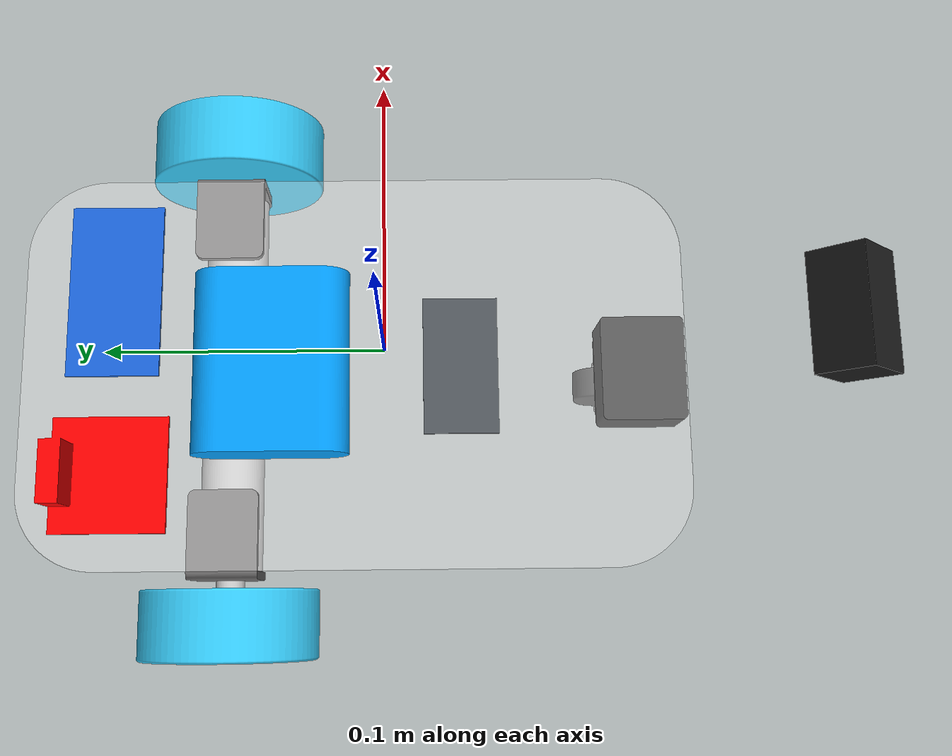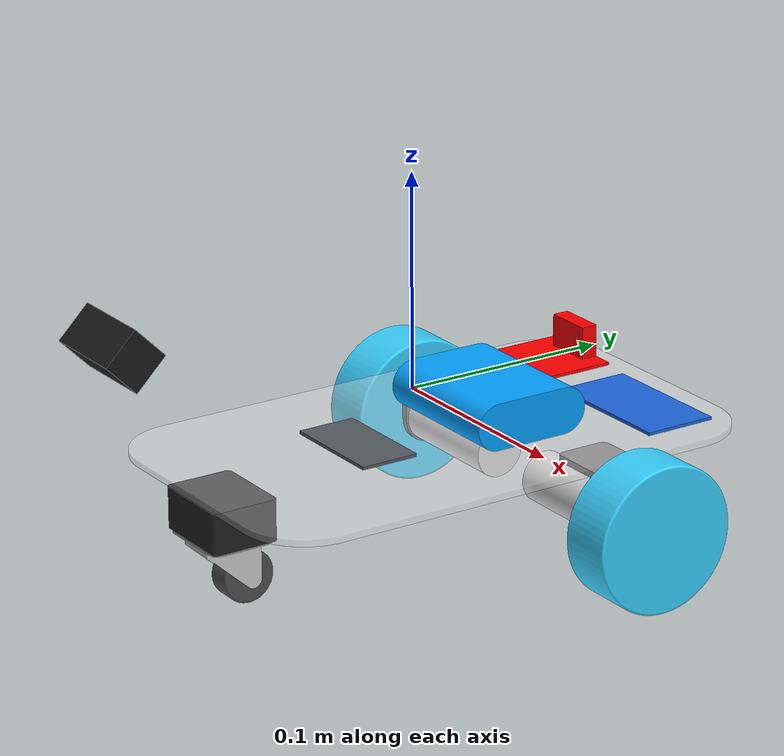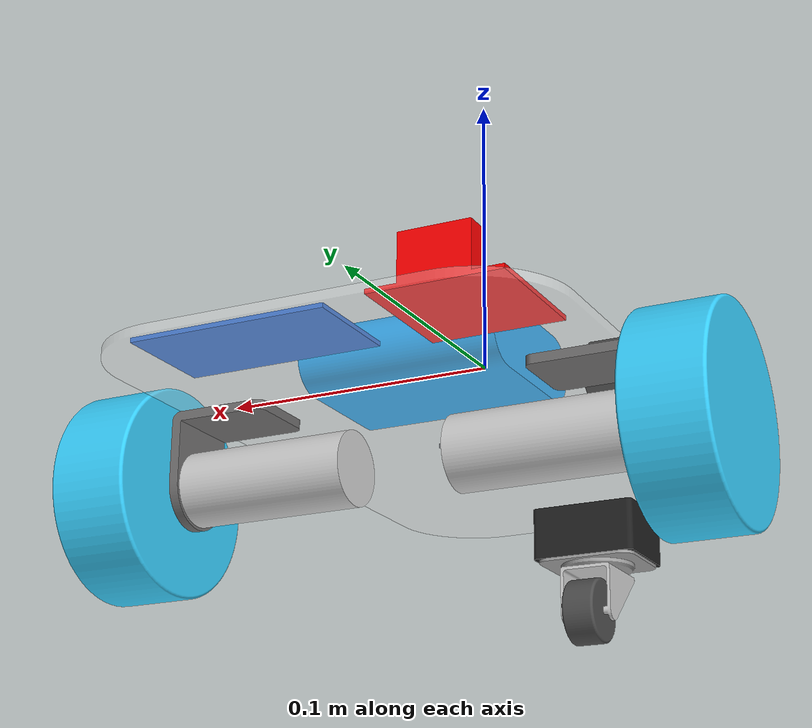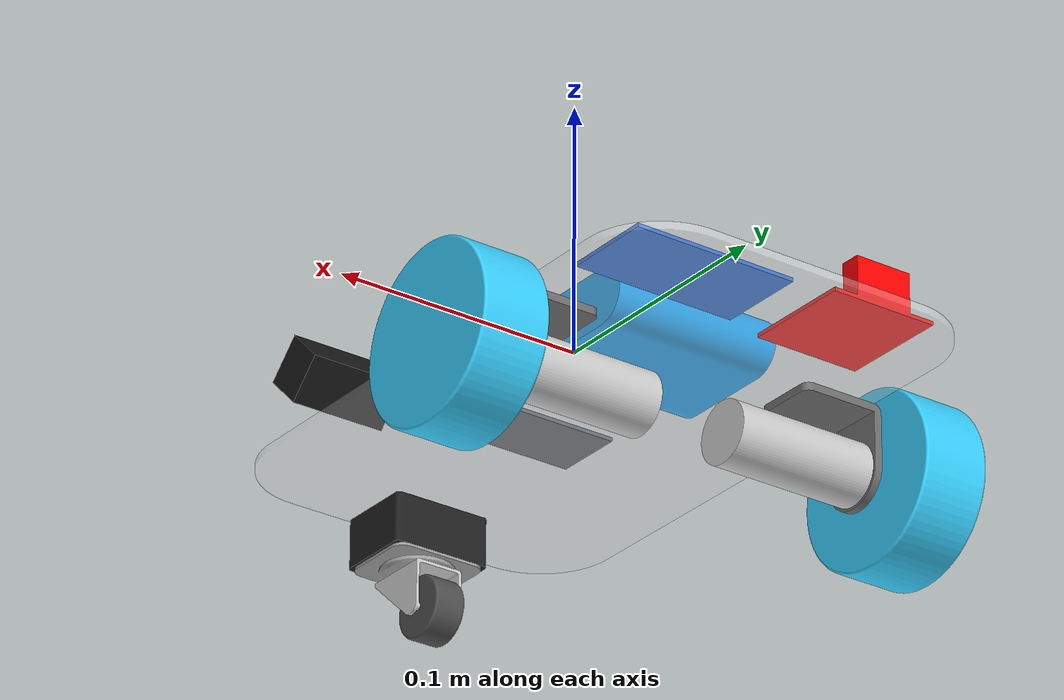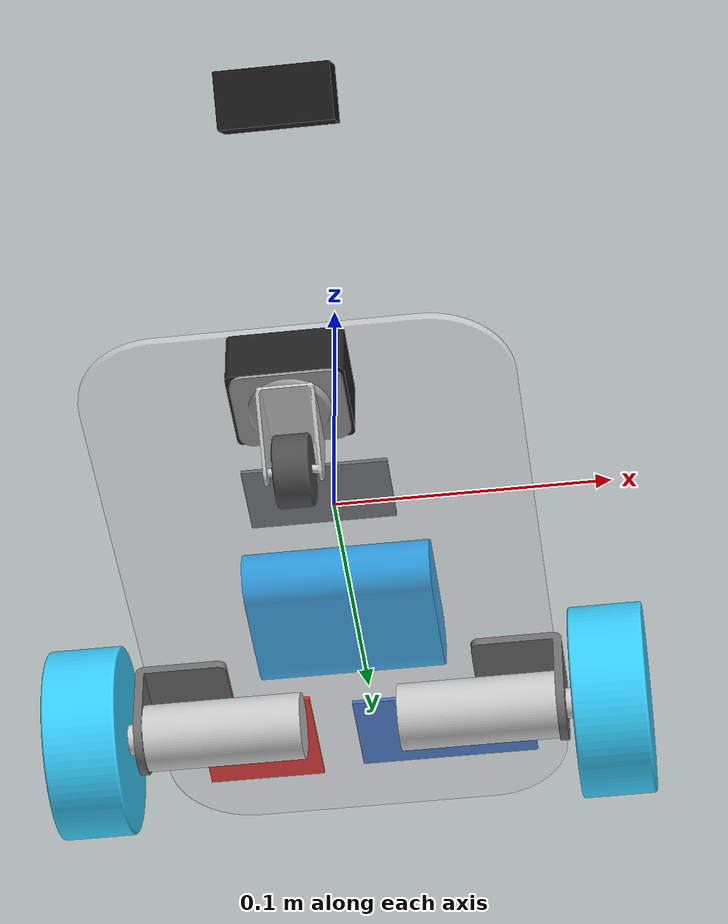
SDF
<?xml version="1.0"?>
<sdf version='1.11'>
  <model name='rover'>
    <link name='base_link'>
      <inertial>
        <pose>-0.00237104 0.0277886 -0.020183599999999999 0 0 0</pose>
        <mass>0.35311599999999999</mass>
        <inertia>
          <ixx>0.00151318</ixx>
          <ixy>3.1576699999999999e-05</ixy>
          <ixz>4.1676499999999998e-06</ixz>
          <iyy>0.00036664100000000002</iyy>
          <iyz>-9.9848999999999999e-05</iyz>
          <izz>0.00182412</izz>
        </inertia>
      </inertial>
      <visual name='base_link_visual'>
        <pose>0.016086300000000001 -0.0852797 0.27276499999999998 -4.7878224133139768e-16 1.5707963267948966 0</pose>
        <geometry>
          <mesh>
            <scale>1 1 1</scale>
            <uri>model://gazebo_gymnasium_resources/models/rover/assets/left_motor.stl</uri>
          </mesh>
        </geometry>
        <material>
          <diffuse>0.808823764 0.808823764 0.808823764 1</diffuse>
          <ambient>0.808823764 0.808823764 0.808823764 1</ambient>
        </material>
      </visual>
      <visual name='base_link_visual_1'>
        <pose>-0.088691500000000006 -0.18808 -0.0273587 0 0 -1.5708</pose>
        <geometry>
          <mesh>
            <scale>1 1 1</scale>
            <uri>model://gazebo_gymnasium_resources/models/rover/assets/base_plate.stl</uri>
          </mesh>
        </geometry>
        <material>
          <diffuse>1 1 1 0.300000012</diffuse>
          <ambient>1 1 1 0.300000012</ambient>
        </material>
      </visual>
      <visual name='base_link_visual_2'>
        <pose>-0.47371400000000002 0.0946882 -0.046858700000000003 3.1415899999999999 0 -3.1415899999999999</pose>
        <geometry>
          <mesh>
            <scale>1 1 1</scale>
            <uri>model://gazebo_gymnasium_resources/models/rover/assets/front_wheel_upper_joint.stl</uri>
          </mesh>
        </geometry>
        <material>
          <diffuse>0.622548759 0.622548759 0.622548759 1</diffuse>
          <ambient>0.622548759 0.622548759 0.622548759 1</ambient>
        </material>
      </visual>
      <visual name='base_link_visual_3'>
        <pose>-0.47271400000000002 -0.22015199999999999 -0.046858700000000003 0 0 -3.1415899999999999</pose>
        <geometry>
          <mesh>
            <scale>1 1 1</scale>
            <uri>model://gazebo_gymnasium_resources/models/rover/assets/front_wheel_bracket.stl</uri>
          </mesh>
        </geometry>
        <material>
          <diffuse>0.127451256 0.127451256 0.127451256 1</diffuse>
          <ambient>0.127451256 0.127451256 0.127451256 1</ambient>
        </material>
      </visual>
      <visual name='base_link_visual_4'>
        <pose>-0.14862900000000001 0.205404 -0.0273587 3.1415899999999999 -1.503819326961759e-32 2.5673900000000004e-16</pose>
        <geometry>
          <mesh>
            <scale>1 1 1</scale>
            <uri>model://gazebo_gymnasium_resources/models/rover/assets/left_motor_bracket.stl</uri>
          </mesh>
        </geometry>
        <material>
          <diffuse>0.441176265 0.436275005 0.436275005 1</diffuse>
          <ambient>0.441176265 0.436275005 0.436275005 1</ambient>
        </material>
      </visual>
      <visual name='base_link_visual_5'>
        <pose>-0.124871 0.087574899999999997 -0.0243587 0 0 -1.5708</pose>
        <geometry>
          <mesh>
            <scale>1 1 1</scale>
            <uri>model://gazebo_gymnasium_resources/models/rover/assets/battery.stl</uri>
          </mesh>
        </geometry>
        <material>
          <diffuse>0.014705874 0.632352531 1 1</diffuse>
          <ambient>0.014705874 0.632352531 1 1</ambient>
        </material>
      </visual>
      <visual name='base_link_visual_6'>
        <pose>0.119292 0.094404399999999999 -0.021358700000000001 0 0 4.7878400000000003e-16</pose>
        <geometry>
          <mesh>
            <scale>1 1 1</scale>
            <uri>model://gazebo_gymnasium_resources/models/rover/assets/esp32.stl</uri>
          </mesh>
        </geometry>
        <material>
          <diffuse>0.328431249 0.352941275 0.377451241 1</diffuse>
          <ambient>0.328431249 0.352941275 0.377451241 1</ambient>
        </material>
      </visual>
      <visual name='base_link_visual_7'>
        <pose>0.20396 0.300238 -0.021358700000000001 0 0 4.7878400000000003e-16</pose>
        <geometry>
          <mesh>
            <scale>1 1 1</scale>
            <uri>model://gazebo_gymnasium_resources/models/rover/assets/motor_controller.stl</uri>
          </mesh>
        </geometry>
        <material>
          <diffuse>1 0 0 1</diffuse>
          <ambient>1 0 0 1</ambient>
        </material>
      </visual>
      <visual name='base_link_visual_8'>
        <pose>-0.019072599999999999 0.115532 0.27276499999999998 3.141589999990253 1.5707963267948966 0</pose>
        <geometry>
          <mesh>
            <scale>1 1 1</scale>
            <uri>model://gazebo_gymnasium_resources/models/rover/assets/right_motor.stl</uri>
          </mesh>
        </geometry>
        <material>
          <diffuse>0.808823764 0.808823764 0.808823764 1</diffuse>
          <ambient>0.808823764 0.808823764 0.808823764 1</ambient>
        </material>
      </visual>
      <visual name='base_link_visual_9'>
        <pose>0.26251000000000002 0.228404 -0.021358700000000001 0 0 4.7878400000000003e-16</pose>
        <geometry>
          <mesh>
            <scale>1 1 1</scale>
            <uri>model://gazebo_gymnasium_resources/models/rover/assets/voltage_regulator.stl</uri>
          </mesh>
        </geometry>
        <material>
          <diffuse>0.107843123 0.397058755 0.862744987 1</diffuse>
          <ambient>0.107843123 0.397058755 0.862744987 1</ambient>
        </material>
      </visual>
      <visual name='base_link_visual_10'>
        <pose>0.14564199999999999 0.0058481200000000001 -0.0273587 3.1415899999999999 0 -3.1415899999999999</pose>
        <geometry>
          <mesh>
            <scale>1 1 1</scale>
            <uri>model://gazebo_gymnasium_resources/models/rover/assets/right_motor_bracket.stl</uri>
          </mesh>
        </geometry>
        <material>
          <diffuse>0.441176265 0.436275005 0.436275005 1</diffuse>
          <ambient>0.441176265 0.436275005 0.436275005 1</ambient>
        </material>
      </visual>
    </link>
    <joint name='front_swivel' type='revolute'>
      <pose relative_to='base_link'>-0.00149314 -0.097873799999999997 -0.050358699999999999 0 2.4651899999999999e-32 3.67761e-16</pose>
      <parent>base_link</parent>
      <child>front_wheel_lower_joint</child>
      <axis>
        <xyz>0 0 1</xyz>
        <limit>
          <lower>-inf</lower>
          <upper>inf</upper>
        </limit>
        <dynamics>
          <spring_reference>0</spring_reference>
          <spring_stiffness>0</spring_stiffness>
        </dynamics>
      </axis>
    </joint>
    <link name='front_wheel_lower_joint'>
      <pose relative_to='front_swivel'>0 0 0 0 0 0</pose>
      <inertial>
        <pose>0 0 0 0 0 0</pose>
        <mass>1.0000000000000001e-09</mass>
        <inertia>
          <ixx>1.0000000000000001e-09</ixx>
          <ixy>0</ixy>
          <ixz>0</ixz>
          <iyy>1.0000000000000001e-09</iyy>
          <iyz>0</iyz>
          <izz>1.0000000000000001e-09</izz>
        </inertia>
      </inertial>
      <visual name='front_wheel_lower_joint_visual'>
        <pose>0.34329399999999999 -0.19021199999999999 0 3.1415899999999999 0 6.16298e-33</pose>
        <geometry>
          <mesh>
            <scale>1 1 1</scale>
            <uri>model://gazebo_gymnasium_resources/models/rover/assets/front_wheel_lower_joint.stl</uri>
          </mesh>
        </geometry>
        <material>
          <diffuse>0.808823764 0.808823764 0.808823764 1</diffuse>
          <ambient>0.808823764 0.808823764 0.808823764 1</ambient>
        </material>
      </visual>
    </link>
    <joint name='front_axle' type='revolute'>
      <pose relative_to='front_wheel_lower_joint'>0.0063499999999999997 0.0096500000000000006 -0.017113199999999999 2.6535897933403332e-06 -1.5707926536359933 3.1415926535897931</pose>
      <parent>front_wheel_lower_joint</parent>
      <child>front_wheel</child>
      <axis>
        <xyz>0 0 1</xyz>
        <limit>
          <lower>-inf</lower>
          <upper>inf</upper>
        </limit>
        <dynamics>
          <spring_reference>0</spring_reference>
          <spring_stiffness>0</spring_stiffness>
        </dynamics>
      </axis>
    </joint>
    <link name='front_wheel'>
      <pose relative_to='front_axle'>0 0 0 0 0 0</pose>
      <inertial>
        <pose>0 0 0 0 0 0</pose>
        <mass>1.0000000000000001e-09</mass>
        <inertia>
          <ixx>1.0000000000000001e-09</ixx>
          <ixy>0</ixy>
          <ixz>0</ixz>
          <iyy>1.0000000000000001e-09</iyy>
          <iyz>0</iyz>
          <izz>1.0000000000000001e-09</izz>
        </inertia>
      </inertial>
      <visual name='front_wheel_visual'>
        <pose>0.34473399999999998 -0.122278 0 3.1415899999999999 9.3588297156177823e-62 -2.5316400000000017e-47</pose>
        <geometry>
          <mesh>
            <scale>1 1 1</scale>
            <uri>model://gazebo_gymnasium_resources/models/rover/assets/front_wheel.stl</uri>
          </mesh>
        </geometry>
        <material>
          <diffuse>0.308823764 0.308823764 0.308823764 1</diffuse>
          <ambient>0.308823764 0.308823764 0.308823764 1</ambient>
        </material>
      </visual>
      <collision name='front_wheel_collision'>
        <geometry>
          <sphere>
            <radius>0.025</radius>
          </sphere>
        </geometry>
        <surface>
          <friction>
            <ode>
              <mu>0.1</mu>
              <mu2>0.1</mu2>
            </ode>
          </friction>
        </surface>
      </collision>

    </link>
    <joint name='left_axle' type='revolute'>
      <pose relative_to='base_link'>0.079786300000000004 0.061126199999999999 -0.050408700000000001 1.5708 -4.4408920985006262e-16 -1.5708</pose>
      <parent>base_link</parent>
      <child>left_wheel</child>
      <axis>
        <xyz>0 0 1</xyz>
        <limit>
          <lower>-inf</lower>
          <upper>inf</upper>
        </limit>
        <dynamics>
          <spring_reference>0</spring_reference>
          <spring_stiffness>0</spring_stiffness>
        </dynamics>
      </axis>
    </joint>
    <link name='left_wheel'>
      <pose relative_to='left_axle'>0 0 0 0 0 0</pose>
      <inertial>
        <pose>5.5511199999999995e-17 -2.7755599999999997e-17 -0.01325 0 0 0</pose>
        <mass>0.034000000000000002</mass>
        <inertia>
          <ixx>1.2006300000000001e-05</ixx>
          <ixy>-8.3133099999999994e-37</ixy>
          <ixz>1.6409400000000001e-36</ixz>
          <iyy>1.2006300000000001e-05</iyy>
          <iyz>7.5581399999999997e-38</iyz>
          <izz>2.0040399999999999e-05</izz>
        </inertia>
      </inertial>
      <visual name='left_wheel_visual'>
        <pose>0.46452900000000003 -0.12765399999999999 -0.026499999999999999 -9.4077000000000004e-33 -8.9189099999999999e-32 2.4630199999999999e-32</pose>
        <geometry>
          <mesh>
            <scale>1 1 1</scale>
            <uri>model://gazebo_gymnasium_resources/models/rover/assets/left_wheel.stl</uri>
          </mesh>
        </geometry>
        <material>
          <diffuse>0.220588744 0.818627477 1 1</diffuse>
          <ambient>0.220588744 0.818627477 1 1</ambient>
        </material>
      </visual>
      <collision name='left_wheel_collision'>
        <geometry>
          <cylinder>
            <radius>0.035</radius>
            <length>0.0265</length>
          </cylinder>
        </geometry>
        <surface>
          <friction>
            <ode>
              <mu>1.0</mu>
              <mu2>1.0</mu2>
            </ode>
          </friction>
        </surface>
      </collision>

    </link>
    <joint name='right_axle' type='revolute'>
      <pose relative_to='base_link'>-0.082772600000000002 0.061126199999999999 -0.050408700000000001 3.1415926535897918 1.5707926536359933 -3.1415926535897931</pose>
      <parent>base_link</parent>
      <child>right_wheel</child>
      <axis>
        <xyz>0 0 -1</xyz>
        <limit>
          <lower>-inf</lower>
          <upper>inf</upper>
        </limit>
        <dynamics>
          <spring_reference>0</spring_reference>
          <spring_stiffness>0</spring_stiffness>
        </dynamics>
      </axis>
    </joint>
    <link name='right_wheel'>
      <pose relative_to='right_axle'>0 0 0 0 0 0</pose>
      <inertial>
        <pose>0 -3.44865e-32 -0.01325 0 0 0</pose>
        <mass>0.034000000000000002</mass>
        <inertia>
          <ixx>1.2006300000000001e-05</ixx>
          <ixy>1.77587e-36</ixy>
          <ixz>1.38229e-36</ixz>
          <iyy>1.2006300000000001e-05</iyy>
          <iyz>-4.2157999999999999e-37</iyz>
          <izz>2.0040399999999999e-05</izz>
        </inertia>
      </inertial>
      <visual name='right_wheel_visual'>
        <pose>0.46452900000000003 -0.028653700000000001 -0.026499999999999999 -1.8503099999999999e-32 8.4744599999999993e-34 7.3955699999999999e-32</pose>
        <geometry>
          <mesh>
            <scale>1 1 1</scale>
            <uri>model://gazebo_gymnasium_resources/models/rover/assets/right_wheel.stl</uri>
          </mesh>
        </geometry>
        <material>
          <diffuse>0.220588744 0.818627477 1 1</diffuse>
          <ambient>0.220588744 0.818627477 1 1</ambient>
        </material>
      </visual>
      <collision name='right_wheel_collision'>
        <geometry>
          <cylinder>
            <radius>0.035</radius>
            <length>0.0265</length>
          </cylinder>
        </geometry>
        <surface>
          <friction>
            <ode>
              <mu>1.0</mu>
              <mu2>1.0</mu2>
            </ode>
          </friction>
        </surface>
      </collision>

    </link>

    <plugin
      filename="gz-sim-diff-drive-system"
      name="gz::sim::systems::DiffDrive">
      <left_joint>left_axle</left_joint>
      <right_joint>right_axle</right_joint>
      <wheel_separation>0.163</wheel_separation>
      <wheel_radius>0.034</wheel_radius>
      <odom_publish_frequency>30</odom_publish_frequency>
      <!-- Physical caster-pop limit is around 1 m/s forward; clamp here
           so even a misbehaving policy can't blow past it. Yaw limit
           matches the env's MAX_Z_VEL spec. -->
      <max_linear_velocity>1.0</max_linear_velocity>
      <min_linear_velocity>-1.0</min_linear_velocity>
      <max_angular_velocity>1.25</max_angular_velocity>
      <min_angular_velocity>-1.25</min_angular_velocity>
    </plugin>

    <plugin
      filename="gz-sim-joint-state-publisher-system"
      name="gz::sim::systems::JointStatePublisher">
      <joint_name>left_axle</joint_name>
      <joint_name>right_axle</joint_name>
      <joint_name>front_swivel</joint_name>
      <joint_name>front_axle</joint_name>
    </plugin>

    <link name="camera_link">
      <pose relative_to="base_link">0 -0.15 0.05 0 0.7854 -1.5708</pose>
      <inertial>
        <mass>0.005</mass>
        <inertia>
          <ixx>1e-7</ixx>
          <ixy>0</ixy>
          <ixz>0</ixz>
          <iyy>1e-7</iyy>
          <iyz>0</iyz>
          <izz>1e-7</izz>
        </inertia>
      </inertial>
      <visual name="visual">
        <geometry>
          <box>
            <size>0.02 0.04 0.02</size>
          </box>
        </geometry>
        <material>
          <ambient>0.1 0.1 0.1 1</ambient>
          <diffuse>0.1 0.1 0.1 1</diffuse>
          <specular>0.05 0.05 0.05 1</specular>
        </material>
      </visual>
      <sensor name="camera" type="camera">
        <pose>0 0 0 0 0 0</pose>
        <topic>camera</topic>
        <gz_frame_id>rover/camera_link</gz_frame_id>
        <update_rate>15</update_rate>
        <always_on>1</always_on>
        <visualize>true</visualize>
        <camera>
          <horizontal_fov>1.047</horizontal_fov>
          <image>
            <width>160</width>
            <height>120</height>
            <format>R8G8B8</format>
          </image>
          <clip>
            <near>0.05</near>
            <far>50</far>
          </clip>
        </camera>
      </sensor>
    </link>

    <joint name="camera_joint" type="fixed">
      <parent>base_link</parent>
      <child>camera_link</child>
    </joint>

  </model>
</sdf>
